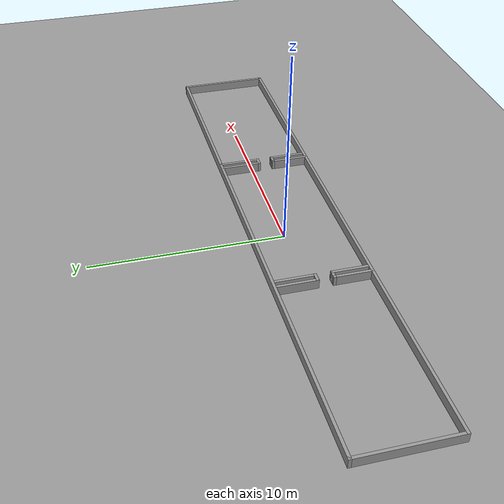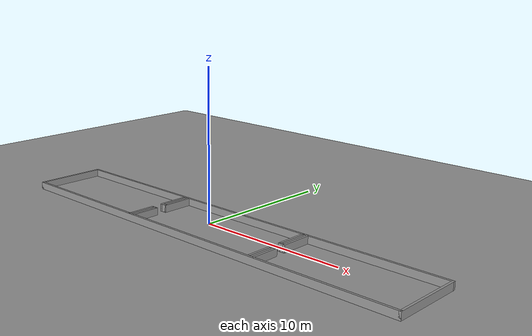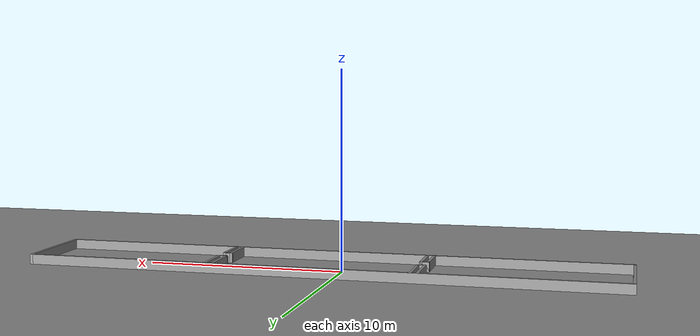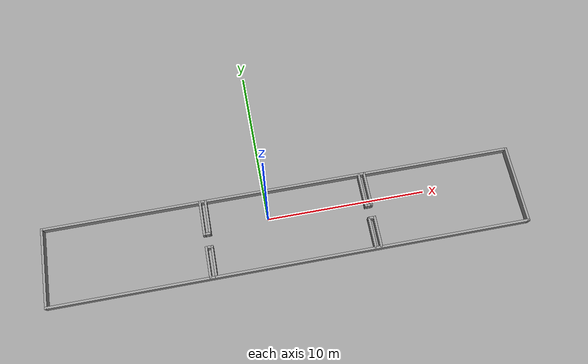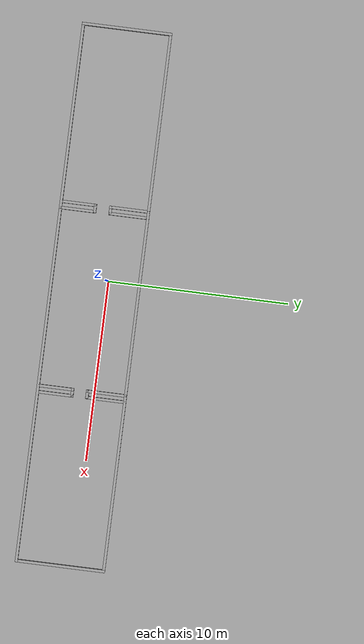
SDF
<?xml version="1.0" ?>
<sdf version="1.5">
  <model name="exp_empty_rooms">
    <light name='sun' type='directional'>
      <cast_shadows>1</cast_shadows>
      <pose frame=''>0 0 10 0 -0 0</pose>
      <diffuse>0.8 0.8 0.8 1</diffuse>
      <specular>0.2 0.2 0.2 1</specular>
      <attenuation>
        <range>1000</range>
        <constant>0.9</constant>
        <linear>0.01</linear>
        <quadratic>0.001</quadratic>
      </attenuation>
      <direction>-0.5 0.1 -0.9</direction>
    </light>
    <model name='ground_plane'>
      <static>1</static>
      <link name='link'>
        <collision name='collision'>
          <geometry>
            <plane>
              <normal>0 0 1</normal>
              <size>100 100</size>
            </plane>
          </geometry>
          <surface>
            <friction>
              <ode>
                <mu>100</mu>
                <mu2>50</mu2>
              </ode>
              <torsional>
                <ode/>
              </torsional>
            </friction>
            <contact>
              <ode/>
            </contact>
            <bounce/>
          </surface>
          <max_contacts>10</max_contacts>
        </collision>
        <visual name='visual'>
          <cast_shadows>0</cast_shadows>
          <geometry>
            <plane>
              <normal>0 0 1</normal>
              <size>100 100</size>
            </plane>
          </geometry>
          <material>
            <script>
              <uri>file://media/materials/scripts/gazebo.material</uri>
              <name>Gazebo/Grey</name>
            </script>
          </material>
        </visual>
        <self_collide>0</self_collide>
        <enable_wind>0</enable_wind>
        <kinematic>0</kinematic>
      </link>
    </model>
    <gravity>0 0 -9.8</gravity>
    <magnetic_field>6e-06 2.3e-05 -4.2e-05</magnetic_field>
    <atmosphere type='adiabatic'/>
    <physics name='default_physics' default='0' type='ode'>
      <max_step_size>0.001</max_step_size>
      <real_time_factor>1</real_time_factor>
      <real_time_update_rate>1000</real_time_update_rate>
    </physics>
    <scene>
      <ambient>0.4 0.4 0.4 1</ambient>
      <background>0.7 0.7 0.7 1</background>
      <shadows>1</shadows>
    </scene>
    <audio>
      <device>default</device>
    </audio>
    <wind/>
    <spherical_coordinates>
      <surface_model>EARTH_WGS84</surface_model>
      <latitude_deg>0</latitude_deg>
      <longitude_deg>0</longitude_deg>
      <elevation>0</elevation>
      <heading_deg>0</heading_deg>
    </spherical_coordinates>
    <model name='exp_empty_rooms'>
      <pose frame=''>0.98441 -0.690645 0 0 -0 0</pose>
      <link name='Wall_0'>
        <collision name='Wall_0_Collision'>
          <geometry>
            <box>
              <size>5 0.15 0.5</size>
            </box>
          </geometry>
          <pose frame=''>0 0 0.25 0 -0 0</pose>
          <max_contacts>10</max_contacts>
          <surface>
            <contact>
              <ode/>
            </contact>
            <bounce/>
            <friction>
              <torsional>
                <ode/>
              </torsional>
              <ode/>
            </friction>
          </surface>
        </collision>
        <visual name='Wall_0_Visual'>
          <pose frame=''>0 0 0.25 0 -0 0</pose>
          <geometry>
            <box>
              <size>5 0.15 0.5</size>
            </box>
          </geometry>
          <material>
            <script>
              <uri>file://media/materials/scripts/gazebo.material</uri>
              <name>Gazebo/Grey</name>
            </script>
            <ambient>1 1 1 1</ambient>
          </material>
          <meta>
            <layer>0</layer>
          </meta>
        </visual>
        <pose frame=''>-14.925 0 0 0 -0 -1.5708</pose>
        <self_collide>0</self_collide>
        <enable_wind>0</enable_wind>
        <kinematic>0</kinematic>
      </link>
      <link name='Wall_1'>
        <collision name='Wall_1_Collision'>
          <geometry>
            <box>
              <size>30 0.15 0.5</size>
            </box>
          </geometry>
          <pose frame=''>0 0 0.25 0 -0 0</pose>
          <max_contacts>10</max_contacts>
          <surface>
            <contact>
              <ode/>
            </contact>
            <bounce/>
            <friction>
              <torsional>
                <ode/>
              </torsional>
              <ode/>
            </friction>
          </surface>
        </collision>
        <visual name='Wall_1_Visual'>
          <pose frame=''>0 0 0.25 0 -0 0</pose>
          <geometry>
            <box>
              <size>30 0.15 0.5</size>
            </box>
          </geometry>
          <material>
            <script>
              <uri>file://media/materials/scripts/gazebo.material</uri>
              <name>Gazebo/Grey</name>
            </script>
            <ambient>1 1 1 1</ambient>
          </material>
          <meta>
            <layer>0</layer>
          </meta>
        </visual>
        <pose frame=''>0 -2.425 0 0 -0 0</pose>
        <self_collide>0</self_collide>
        <enable_wind>0</enable_wind>
        <kinematic>0</kinematic>
      </link>
      <link name='Wall_10'>
        <collision name='Wall_10_Collision'>
          <geometry>
            <box>
              <size>2.25 0.15 0.5</size>
            </box>
          </geometry>
          <pose frame=''>0 0 0.25 0 -0 0</pose>
          <max_contacts>10</max_contacts>
          <surface>
            <contact>
              <ode/>
            </contact>
            <bounce/>
            <friction>
              <torsional>
                <ode/>
              </torsional>
              <ode/>
            </friction>
          </surface>
        </collision>
        <visual name='Wall_10_Visual'>
          <pose frame=''>0 0 0.25 0 -0 0</pose>
          <geometry>
            <box>
              <size>2.25 0.15 0.5</size>
            </box>
          </geometry>
          <material>
            <script>
              <uri>file://media/materials/scripts/gazebo.material</uri>
              <name>Gazebo/Grey</name>
            </script>
            <ambient>1 1 1 1</ambient>
          </material>
          <meta>
            <layer>0</layer>
          </meta>
        </visual>
        <pose frame=''>-5.055 1.375 0 0 -0 -1.5708</pose>
        <self_collide>0</self_collide>
        <enable_wind>0</enable_wind>
        <kinematic>0</kinematic>
      </link>
      <link name='Wall_11'>
        <collision name='Wall_11_Collision'>
          <geometry>
            <box>
              <size>0.5 0.15 0.5</size>
            </box>
          </geometry>
          <pose frame=''>0 0 0.25 0 -0 0</pose>
          <max_contacts>10</max_contacts>
          <surface>
            <contact>
              <ode/>
            </contact>
            <bounce/>
            <friction>
              <torsional>
                <ode/>
              </torsional>
              <ode/>
            </friction>
          </surface>
        </collision>
        <visual name='Wall_11_Visual'>
          <pose frame=''>0 0 0.25 0 -0 0</pose>
          <geometry>
            <box>
              <size>0.5 0.15 0.5</size>
            </box>
          </geometry>
          <material>
            <script>
              <uri>file://media/materials/scripts/gazebo.material</uri>
              <name>Gazebo/Grey</name>
            </script>
            <ambient>1 1 1 1</ambient>
          </material>
          <meta>
            <layer>0</layer>
          </meta>
        </visual>
        <pose frame=''>-4.88 0.325 0 0 -0 0</pose>
        <self_collide>0</self_collide>
        <enable_wind>0</enable_wind>
        <kinematic>0</kinematic>
      </link>
      <link name='Wall_12'>
        <collision name='Wall_12_Collision'>
          <geometry>
            <box>
              <size>2.25 0.15 0.5</size>
            </box>
          </geometry>
          <pose frame=''>0 0 0.25 0 -0 0</pose>
          <max_contacts>10</max_contacts>
          <surface>
            <contact>
              <ode/>
            </contact>
            <bounce/>
            <friction>
              <torsional>
                <ode/>
              </torsional>
              <ode/>
            </friction>
          </surface>
        </collision>
        <visual name='Wall_12_Visual'>
          <pose frame=''>0 0 0.25 0 -0 0</pose>
          <geometry>
            <box>
              <size>2.25 0.15 0.5</size>
            </box>
          </geometry>
          <material>
            <script>
              <uri>file://media/materials/scripts/gazebo.material</uri>
              <name>Gazebo/Grey</name>
            </script>
            <ambient>1 1 1 1</ambient>
          </material>
          <meta>
            <layer>0</layer>
          </meta>
        </visual>
        <pose frame=''>-4.705 1.375 0 0 -0 1.5708</pose>
        <self_collide>0</self_collide>
        <enable_wind>0</enable_wind>
        <kinematic>0</kinematic>
      </link>
      <link name='Wall_16'>
        <collision name='Wall_16_Collision'>
          <geometry>
            <box>
              <size>0.5 0.15 0.5</size>
            </box>
          </geometry>
          <pose frame=''>0 0 0.25 0 -0 0</pose>
          <max_contacts>10</max_contacts>
          <surface>
            <contact>
              <ode/>
            </contact>
            <bounce/>
            <friction>
              <torsional>
                <ode/>
              </torsional>
              <ode/>
            </friction>
          </surface>
        </collision>
        <visual name='Wall_16_Visual'>
          <pose frame=''>0 0 0.25 0 -0 0</pose>
          <geometry>
            <box>
              <size>0.5 0.15 0.5</size>
            </box>
          </geometry>
          <material>
            <script>
              <uri>file://media/materials/scripts/gazebo.material</uri>
              <name>Gazebo/Grey</name>
            </script>
            <ambient>1 1 1 1</ambient>
          </material>
          <meta>
            <layer>0</layer>
          </meta>
        </visual>
        <pose frame=''>-4.88 -0.525 0 0 -0 0</pose>
        <self_collide>0</self_collide>
        <enable_wind>0</enable_wind>
        <kinematic>0</kinematic>
      </link>
      <link name='Wall_17'>
        <collision name='Wall_17_Collision'>
          <geometry>
            <box>
              <size>2 0.15 0.5</size>
            </box>
          </geometry>
          <pose frame=''>0 0 0.25 0 -0 0</pose>
          <max_contacts>10</max_contacts>
          <surface>
            <contact>
              <ode/>
            </contact>
            <bounce/>
            <friction>
              <torsional>
                <ode/>
              </torsional>
              <ode/>
            </friction>
          </surface>
        </collision>
        <visual name='Wall_17_Visual'>
          <pose frame=''>0 0 0.25 0 -0 0</pose>
          <geometry>
            <box>
              <size>2 0.15 0.5</size>
            </box>
          </geometry>
          <material>
            <script>
              <uri>file://media/materials/scripts/gazebo.material</uri>
              <name>Gazebo/Grey</name>
            </script>
            <ambient>1 1 1 1</ambient>
          </material>
          <meta>
            <layer>0</layer>
          </meta>
        </visual>
        <pose frame=''>-4.705 -1.45 0 0 -0 -1.5708</pose>
        <self_collide>0</self_collide>
        <enable_wind>0</enable_wind>
        <kinematic>0</kinematic>
      </link>
      <link name='Wall_19'>
        <collision name='Wall_19_Collision'>
          <geometry>
            <box>
              <size>2 0.15 0.5</size>
            </box>
          </geometry>
          <pose frame=''>0 0 0.25 0 -0 0</pose>
          <max_contacts>10</max_contacts>
          <surface>
            <contact>
              <ode/>
            </contact>
            <bounce/>
            <friction>
              <torsional>
                <ode/>
              </torsional>
              <ode/>
            </friction>
          </surface>
        </collision>
        <visual name='Wall_19_Visual'>
          <pose frame=''>0 0 0.25 0 -0 0</pose>
          <geometry>
            <box>
              <size>2 0.15 0.5</size>
            </box>
          </geometry>
          <material>
            <script>
              <uri>file://media/materials/scripts/gazebo.material</uri>
              <name>Gazebo/Grey</name>
            </script>
            <ambient>1 1 1 1</ambient>
          </material>
          <meta>
            <layer>0</layer>
          </meta>
        </visual>
        <pose frame=''>-5.055 -1.45 0 0 -0 -1.5708</pose>
        <self_collide>0</self_collide>
        <enable_wind>0</enable_wind>
        <kinematic>0</kinematic>
      </link>
      <link name='Wall_2'>
        <collision name='Wall_2_Collision'>
          <geometry>
            <box>
              <size>5 0.15 0.5</size>
            </box>
          </geometry>
          <pose frame=''>0 0 0.25 0 -0 0</pose>
          <max_contacts>10</max_contacts>
          <surface>
            <contact>
              <ode/>
            </contact>
            <bounce/>
            <friction>
              <torsional>
                <ode/>
              </torsional>
              <ode/>
            </friction>
          </surface>
        </collision>
        <visual name='Wall_2_Visual'>
          <pose frame=''>0 0 0.25 0 -0 0</pose>
          <geometry>
            <box>
              <size>5 0.15 0.5</size>
            </box>
          </geometry>
          <material>
            <script>
              <uri>file://media/materials/scripts/gazebo.material</uri>
              <name>Gazebo/Grey</name>
            </script>
            <ambient>1 1 1 1</ambient>
          </material>
          <meta>
            <layer>0</layer>
          </meta>
        </visual>
        <pose frame=''>14.925 0 0 0 -0 1.5708</pose>
        <self_collide>0</self_collide>
        <enable_wind>0</enable_wind>
        <kinematic>0</kinematic>
      </link>
      <link name='Wall_3'>
        <collision name='Wall_3_Collision'>
          <geometry>
            <box>
              <size>30 0.15 0.5</size>
            </box>
          </geometry>
          <pose frame=''>0 0 0.25 0 -0 0</pose>
          <max_contacts>10</max_contacts>
          <surface>
            <contact>
              <ode/>
            </contact>
            <bounce/>
            <friction>
              <torsional>
                <ode/>
              </torsional>
              <ode/>
            </friction>
          </surface>
        </collision>
        <visual name='Wall_3_Visual'>
          <pose frame=''>0 0 0.25 0 -0 0</pose>
          <geometry>
            <box>
              <size>30 0.15 0.5</size>
            </box>
          </geometry>
          <material>
            <script>
              <uri>file://media/materials/scripts/gazebo.material</uri>
              <name>Gazebo/Grey</name>
            </script>
            <ambient>1 1 1 1</ambient>
          </material>
          <meta>
            <layer>0</layer>
          </meta>
        </visual>
        <pose frame=''>0 2.425 0 0 -0 3.14159</pose>
        <self_collide>0</self_collide>
        <enable_wind>0</enable_wind>
        <kinematic>0</kinematic>
      </link>
      <link name='Wall_38'>
        <collision name='Wall_38_Collision'>
          <geometry>
            <box>
              <size>2 0.15 0.5</size>
            </box>
          </geometry>
          <pose frame=''>0 0 0.25 0 -0 0</pose>
          <max_contacts>10</max_contacts>
          <surface>
            <contact>
              <ode/>
            </contact>
            <bounce/>
            <friction>
              <torsional>
                <ode/>
              </torsional>
              <ode/>
            </friction>
          </surface>
        </collision>
        <visual name='Wall_38_Visual'>
          <pose frame=''>0 0 0.25 0 -0 0</pose>
          <geometry>
            <box>
              <size>2 0.15 0.5</size>
            </box>
          </geometry>
          <material>
            <script>
              <uri>file://media/materials/scripts/gazebo.material</uri>
              <name>Gazebo/Grey</name>
            </script>
            <ambient>1 1 1 1</ambient>
          </material>
          <meta>
            <layer>0</layer>
          </meta>
        </visual>
        <pose frame=''>5.185 -1.44 0 0 -0 -1.5708</pose>
        <self_collide>0</self_collide>
        <enable_wind>0</enable_wind>
        <kinematic>0</kinematic>
      </link>
      <link name='Wall_43'>
        <collision name='Wall_43_Collision'>
          <geometry>
            <box>
              <size>0.5 0.15 0.5</size>
            </box>
          </geometry>
          <pose frame=''>0 0 0.25 0 -0 0</pose>
          <max_contacts>10</max_contacts>
          <surface>
            <contact>
              <ode/>
            </contact>
            <bounce/>
            <friction>
              <torsional>
                <ode/>
              </torsional>
              <ode/>
            </friction>
          </surface>
        </collision>
        <visual name='Wall_43_Visual'>
          <pose frame=''>0 0 0.25 0 -0 0</pose>
          <geometry>
            <box>
              <size>0.5 0.15 0.5</size>
            </box>
          </geometry>
          <material>
            <script>
              <uri>file://media/materials/scripts/gazebo.material</uri>
              <name>Gazebo/Grey</name>
            </script>
            <ambient>1 1 1 1</ambient>
          </material>
          <meta>
            <layer>0</layer>
          </meta>
        </visual>
        <pose frame=''>5.36 -0.515 0 0 -0 0</pose>
        <self_collide>0</self_collide>
        <enable_wind>0</enable_wind>
        <kinematic>0</kinematic>
      </link>
      <link name='Wall_44'>
        <collision name='Wall_44_Collision'>
          <geometry>
            <box>
              <size>2 0.15 0.5</size>
            </box>
          </geometry>
          <pose frame=''>0 0 0.25 0 -0 0</pose>
          <max_contacts>10</max_contacts>
          <surface>
            <contact>
              <ode/>
            </contact>
            <bounce/>
            <friction>
              <torsional>
                <ode/>
              </torsional>
              <ode/>
            </friction>
          </surface>
        </collision>
        <visual name='Wall_44_Visual'>
          <pose frame=''>0 0 0.25 0 -0 0</pose>
          <geometry>
            <box>
              <size>2 0.15 0.5</size>
            </box>
          </geometry>
          <material>
            <script>
              <uri>file://media/materials/scripts/gazebo.material</uri>
              <name>Gazebo/Grey</name>
            </script>
            <ambient>1 1 1 1</ambient>
          </material>
          <meta>
            <layer>0</layer>
          </meta>
        </visual>
        <pose frame=''>5.535 -1.44 0 0 -0 -1.5708</pose>
        <self_collide>0</self_collide>
        <enable_wind>0</enable_wind>
        <kinematic>0</kinematic>
      </link>
      <link name='Wall_47'>
        <collision name='Wall_47_Collision'>
          <geometry>
            <box>
              <size>2.25 0.15 0.5</size>
            </box>
          </geometry>
          <pose frame=''>0 0 0.25 0 -0 0</pose>
          <max_contacts>10</max_contacts>
          <surface>
            <contact>
              <ode/>
            </contact>
            <bounce/>
            <friction>
              <torsional>
                <ode/>
              </torsional>
              <ode/>
            </friction>
          </surface>
        </collision>
        <visual name='Wall_47_Visual'>
          <pose frame=''>0 0 0.25 0 -0 0</pose>
          <geometry>
            <box>
              <size>2.25 0.15 0.5</size>
            </box>
          </geometry>
          <material>
            <script>
              <uri>file://media/materials/scripts/gazebo.material</uri>
              <name>Gazebo/Grey</name>
            </script>
            <ambient>1 1 1 1</ambient>
          </material>
          <meta>
            <layer>0</layer>
          </meta>
        </visual>
        <pose frame=''>5.175 1.365 0 0 -0 1.5708</pose>
        <self_collide>0</self_collide>
        <enable_wind>0</enable_wind>
        <kinematic>0</kinematic>
      </link>
      <link name='Wall_49'>
        <collision name='Wall_49_Collision'>
          <geometry>
            <box>
              <size>0.5 0.15 0.5</size>
            </box>
          </geometry>
          <pose frame=''>0 0 0.25 0 -0 0</pose>
          <max_contacts>10</max_contacts>
          <surface>
            <contact>
              <ode/>
            </contact>
            <bounce/>
            <friction>
              <torsional>
                <ode/>
              </torsional>
              <ode/>
            </friction>
          </surface>
        </collision>
        <visual name='Wall_49_Visual'>
          <pose frame=''>0 0 0.25 0 -0 0</pose>
          <geometry>
            <box>
              <size>0.5 0.15 0.5</size>
            </box>
          </geometry>
          <material>
            <script>
              <uri>file://media/materials/scripts/gazebo.material</uri>
              <name>Gazebo/Grey</name>
            </script>
            <ambient>1 1 1 1</ambient>
          </material>
          <meta>
            <layer>0</layer>
          </meta>
        </visual>
        <pose frame=''>5.35 0.315 0 0 -0 0</pose>
        <self_collide>0</self_collide>
        <enable_wind>0</enable_wind>
        <kinematic>0</kinematic>
      </link>
      <link name='Wall_51'>
        <collision name='Wall_51_Collision'>
          <geometry>
            <box>
              <size>2.25 0.15 0.5</size>
            </box>
          </geometry>
          <pose frame=''>0 0 0.25 0 -0 0</pose>
          <max_contacts>10</max_contacts>
          <surface>
            <contact>
              <ode/>
            </contact>
            <bounce/>
            <friction>
              <torsional>
                <ode/>
              </torsional>
              <ode/>
            </friction>
          </surface>
        </collision>
        <visual name='Wall_51_Visual'>
          <pose frame=''>0 0 0.25 0 -0 0</pose>
          <geometry>
            <box>
              <size>2.25 0.15 0.5</size>
            </box>
          </geometry>
          <material>
            <script>
              <uri>file://media/materials/scripts/gazebo.material</uri>
              <name>Gazebo/Grey</name>
            </script>
            <ambient>1 1 1 1</ambient>
          </material>
          <meta>
            <layer>0</layer>
          </meta>
        </visual>
        <pose frame=''>5.525 1.365 0 0 -0 1.5708</pose>
        <self_collide>0</self_collide>
        <enable_wind>0</enable_wind>
        <kinematic>0</kinematic>
      </link>
      <static>1</static>
    </model>
    <state world_name='default'>
      <sim_time>68 198000000</sim_time>
      <real_time>68 483826227</real_time>
      <wall_time>1579895048 749459437</wall_time>
      <iterations>68198</iterations>
      <model name='exp_empty_rooms'>
        <pose frame=''>-0.032029 0.002641 0 0 -0 0</pose>
        <scale>1 1 1</scale>
        <link name='Wall_0'>
          <pose frame=''>-14.957 0.002641 0 0 0 -1.5708</pose>
          <velocity>0 0 0 0 -0 0</velocity>
          <acceleration>0 0 0 0 -0 0</acceleration>
          <wrench>0 0 0 0 -0 0</wrench>
        </link>
        <link name='Wall_1'>
          <pose frame=''>-0.032029 -2.42236 0 0 -0 0</pose>
          <velocity>0 0 0 0 -0 0</velocity>
          <acceleration>0 0 0 0 -0 0</acceleration>
          <wrench>0 0 0 0 -0 0</wrench>
        </link>
        <link name='Wall_10'>
          <pose frame=''>-5.08703 1.37764 0 0 0 -1.5708</pose>
          <velocity>0 0 0 0 -0 0</velocity>
          <acceleration>0 0 0 0 -0 0</acceleration>
          <wrench>0 0 0 0 -0 0</wrench>
        </link>
        <link name='Wall_11'>
          <pose frame=''>-4.91203 0.327641 0 0 -0 0</pose>
          <velocity>0 0 0 0 -0 0</velocity>
          <acceleration>0 0 0 0 -0 0</acceleration>
          <wrench>0 0 0 0 -0 0</wrench>
        </link>
        <link name='Wall_12'>
          <pose frame=''>-4.73703 1.37764 0 0 -0 1.5708</pose>
          <velocity>0 0 0 0 -0 0</velocity>
          <acceleration>0 0 0 0 -0 0</acceleration>
          <wrench>0 0 0 0 -0 0</wrench>
        </link>
        <link name='Wall_16'>
          <pose frame=''>-4.91203 -0.522359 0 0 -0 0</pose>
          <velocity>0 0 0 0 -0 0</velocity>
          <acceleration>0 0 0 0 -0 0</acceleration>
          <wrench>0 0 0 0 -0 0</wrench>
        </link>
        <link name='Wall_17'>
          <pose frame=''>-4.73703 -1.44736 0 0 0 -1.5708</pose>
          <velocity>0 0 0 0 -0 0</velocity>
          <acceleration>0 0 0 0 -0 0</acceleration>
          <wrench>0 0 0 0 -0 0</wrench>
        </link>
        <link name='Wall_19'>
          <pose frame=''>-5.08703 -1.44736 0 0 0 -1.5708</pose>
          <velocity>0 0 0 0 -0 0</velocity>
          <acceleration>0 0 0 0 -0 0</acceleration>
          <wrench>0 0 0 0 -0 0</wrench>
        </link>
        <link name='Wall_2'>
          <pose frame=''>14.893 0.002641 0 0 -0 1.5708</pose>
          <velocity>0 0 0 0 -0 0</velocity>
          <acceleration>0 0 0 0 -0 0</acceleration>
          <wrench>0 0 0 0 -0 0</wrench>
        </link>
        <link name='Wall_3'>
          <pose frame=''>-0.032029 2.42764 0 0 -0 3.14159</pose>
          <velocity>0 0 0 0 -0 0</velocity>
          <acceleration>0 0 0 0 -0 0</acceleration>
          <wrench>0 0 0 0 -0 0</wrench>
        </link>
        <link name='Wall_38'>
          <pose frame=''>5.15297 -1.43736 0 0 0 -1.5708</pose>
          <velocity>0 0 0 0 -0 0</velocity>
          <acceleration>0 0 0 0 -0 0</acceleration>
          <wrench>0 0 0 0 -0 0</wrench>
        </link>
        <link name='Wall_43'>
          <pose frame=''>5.32797 -0.512359 0 0 -0 0</pose>
          <velocity>0 0 0 0 -0 0</velocity>
          <acceleration>0 0 0 0 -0 0</acceleration>
          <wrench>0 0 0 0 -0 0</wrench>
        </link>
        <link name='Wall_44'>
          <pose frame=''>5.50297 -1.43736 0 0 0 -1.5708</pose>
          <velocity>0 0 0 0 -0 0</velocity>
          <acceleration>0 0 0 0 -0 0</acceleration>
          <wrench>0 0 0 0 -0 0</wrench>
        </link>
        <link name='Wall_47'>
          <pose frame=''>5.14297 1.36764 0 0 -0 1.5708</pose>
          <velocity>0 0 0 0 -0 0</velocity>
          <acceleration>0 0 0 0 -0 0</acceleration>
          <wrench>0 0 0 0 -0 0</wrench>
        </link>
        <link name='Wall_49'>
          <pose frame=''>5.31797 0.317641 0 0 -0 0</pose>
          <velocity>0 0 0 0 -0 0</velocity>
          <acceleration>0 0 0 0 -0 0</acceleration>
          <wrench>0 0 0 0 -0 0</wrench>
        </link>
        <link name='Wall_51'>
          <pose frame=''>5.49297 1.36764 0 0 -0 1.5708</pose>
          <velocity>0 0 0 0 -0 0</velocity>
          <acceleration>0 0 0 0 -0 0</acceleration>
          <wrench>0 0 0 0 -0 0</wrench>
        </link>
      </model>
      <model name='ground_plane'>
        <pose frame=''>0 0 0 0 -0 0</pose>
        <scale>1 1 1</scale>
        <link name='link'>
          <pose frame=''>0 0 0 0 -0 0</pose>
          <velocity>0 0 0 0 -0 0</velocity>
          <acceleration>0 0 0 0 -0 0</acceleration>
          <wrench>0 0 0 0 -0 0</wrench>
        </link>
      </model>
      <light name='sun'>
        <pose frame=''>0 0 10 0 -0 0</pose>
      </light>
    </state>
    <gui fullscreen='0'>
      <camera name='user_camera'>
        <pose frame=''>77.5047 9.64372 47.1511 0 0.419644 -3.13498</pose>
        <view_controller>orbit</view_controller>
        <projection_type>perspective</projection_type>
      </camera>
    </gui>

  </model>
</sdf>
